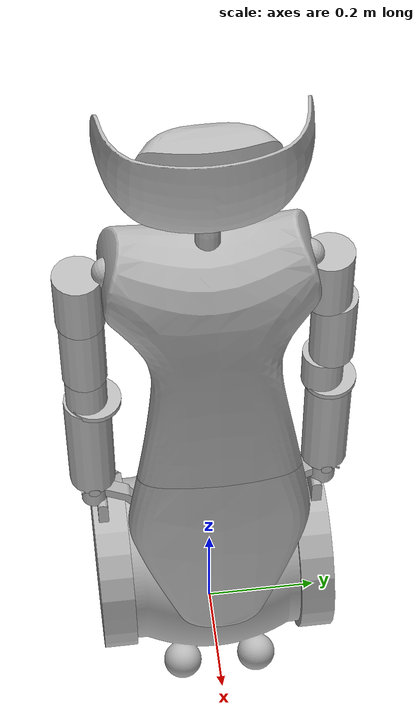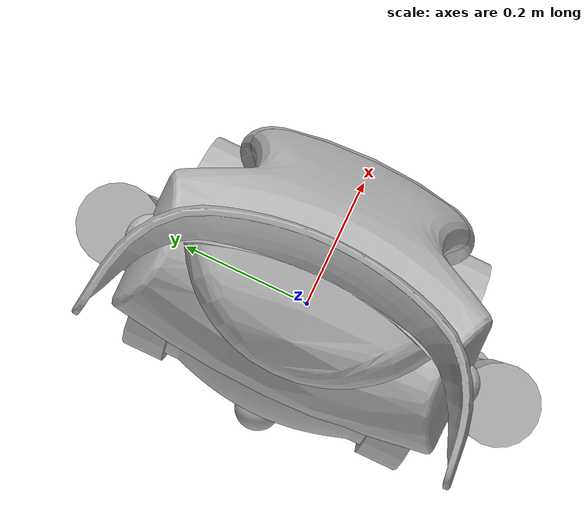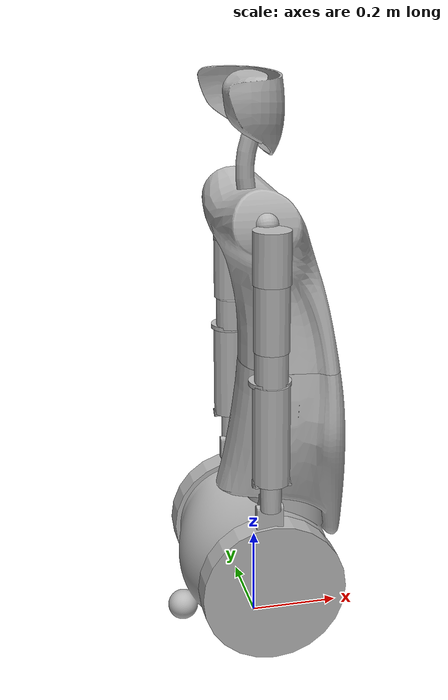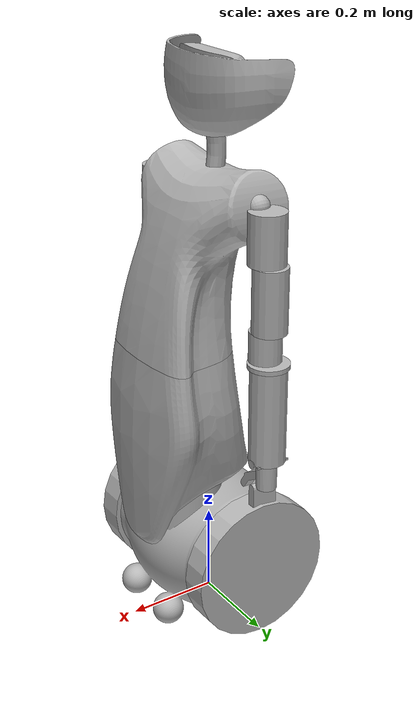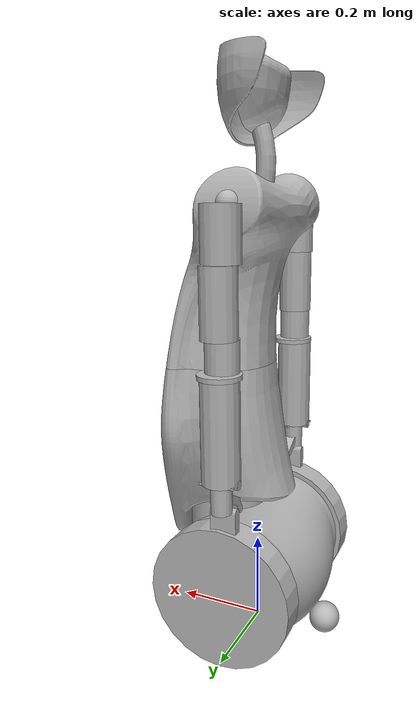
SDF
<?xml version='1.0'?>
<sdf version='1.5'>
  <model name="SIM_CER_ROBOT_fixed">
    <include>
      <uri>model://cer</uri>
      <pose>0.0 0.0 0.0 0.0 0.0 0.0</pose>
    </include>

    <joint name="fixed to ground" type="revolute">
      <parent>world</parent>
      <child>SIM_CER_ROBOT::mobile_base_body</child>
       <axis>
        <limit>
          <lower>0</lower>
          <upper>0</upper>
        </limit>
        <xyz>0 0 0</xyz>
        </axis>
    </joint>

  </model>
</sdf>

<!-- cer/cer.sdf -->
<sdf version='1.5'>
  <model name='SIM_CER_ROBOT'>
    <link name='mobile_base_body'>
      <pose>0 0 0 0 -0 0</pose>
      <inertial>
        <pose>0.016717 0 0.201998 0 -0 0</pose>
        <mass>16</mass>
        <inertia>
          <ixx>0.331884</ixx>
          <ixy>0</ixy>
          <ixz>-0.0448172</ixz>
          <iyy>0.34974</iyy>
          <iyz>0</iyz>
          <izz>0.21095</izz>
        </inertia>
      </inertial>
      <collision name='mobile_base_body_collision'>
        <pose>0 0 0 0 -0 0</pose>
        <geometry>
          <mesh>
            <scale>0.001 0.001 0.001</scale>
            <uri>model://cer/meshes/stl/sim_cer_mobilebase_body_prt.stl</uri>
          </mesh>
        </geometry>
        <surface>
            <friction>
              <ode>
                <mu>0.0</mu>
                <mu2>0.0</mu2>
                <slip1>1.0</slip1>
                <slip2>1.0</slip2>
              </ode>
            </friction>
         </surface>
      </collision>
      <visual name='mobile_base_body_visual'>
        <pose>0 0 0 0 -0 0</pose>
        <geometry>
          <mesh>
            <scale>0.001 0.001 0.001</scale>
            <uri>model://cer/meshes/stl/sim_cer_mobilebase_body_prt.stl</uri>
          </mesh>
        </geometry>
      </visual>
      <sensor name ='base_laser' type='ray'>
      <pose>0.3 0 0.1 0 0 0</pose>
      <visualize>true</visualize>
      <update_rate>40</update_rate>
      <ray>
        <scan>
          <horizontal>
            <samples>360</samples>
            <resolution>1</resolution>
            <min_angle>-3.14</min_angle>
            <max_angle>3.14</max_angle>
          </horizontal>
        </scan>
        <range>
          <min>0.10</min>
          <max>5.0</max>
          <resolution>0.01</resolution>
        </range>
        <noise>
          <type>gaussian</type>
          <mean>0.0</mean>
          <stddev>0.005</stddev>
        </noise>
      </ray>
        <plugin name='laser_sensor' filename='libgazebo_yarp_lasersensor.so'>
           <yarpConfigurationFile>model://cer/conf/gazebo_cer_laser_sensor.ini</yarpConfigurationFile>
        </plugin>
      </sensor>
    </link>
    <link name='mobile_base_l_tyre'>
      <pose>0 0.15 0.16 0 -0 0</pose>
      <inertial>
        <pose>0 0.034423 0 0 -0 0</pose>
        <mass>3</mass>
        <inertia>
          <ixx>0.0200167</ixx>
          <ixy>0</ixy>
          <ixz>0</ixz>
          <iyy>0.0376153</iyy>
          <iyz>0</iyz>
          <izz>0.0200167</izz>
        </inertia>
      </inertial>
      <collision name='mobile_base_l_tyre_collision'>
        <pose>0 -0.15 -0.16 0 -0 0</pose>
        <geometry>
          <mesh>
            <scale>0.001 0.001 0.001</scale>
            <uri>model://cer/meshes/stl/sim_cer_mobilebase_l_tyre_prt.stl</uri>
          </mesh>
        </geometry>
      </collision>
      <visual name='mobile_base_l_tyre_visual'>
        <pose>0 -0.15 -0.16 0 -0 0</pose>
        <geometry>
          <mesh>
            <scale>0.001 0.001 0.001</scale>
            <uri>model://cer/meshes/stl/sim_cer_mobilebase_l_tyre_prt.stl</uri>
          </mesh>
        </geometry>
      </visual>
    </link>
    <joint name='mobile_base_l_wheel' type='revolute'>
      <child>mobile_base_l_tyre</child>
      <parent>mobile_base_body</parent>
      <axis>
        <xyz>0 1 0</xyz>
        <limit>
          <effort>100</effort>
          <velocity>50000</velocity>
        </limit>
        <dynamics>
          <damping>1</damping>
          <friction>0</friction>
          <spring_reference>0</spring_reference>
          <spring_stiffness>0</spring_stiffness>
        </dynamics>
        <use_parent_model_frame>1</use_parent_model_frame>
      </axis>
      <physics>
        <ode>
          <implicit_spring_damper>1</implicit_spring_damper>
          <cfm_damping>1</cfm_damping>
          <limit>
            <cfm>0</cfm>
            <erp>0.2</erp>
          </limit>
        </ode>
      </physics>
    </joint>
    <link name='mobile_base_r_tyre'>
      <pose>0 -0.15 0.16 0 -0 0</pose>
      <inertial>
        <pose>0 -0.034423 0 0 -0 0</pose>
        <mass>3</mass>
        <inertia>
          <ixx>0.0200167</ixx>
          <ixy>0</ixy>
          <ixz>0</ixz>
          <iyy>0.0376153</iyy>
          <iyz>0</iyz>
          <izz>0.0200167</izz>
        </inertia>
      </inertial>
      <collision name='mobile_base_r_tyre_collision'>
        <pose>0 0.15 -0.16 0 -0 0</pose>
        <geometry>
          <mesh>
            <scale>0.001 0.001 0.001</scale>
            <uri>model://cer/meshes/stl/sim_cer_mobilebase_r_tyre_prt.stl</uri>
          </mesh>
        </geometry>
      </collision>
      <visual name='mobile_base_r_tyre_visual'>
        <pose>0 0.15 -0.16 0 -0 0</pose>
        <geometry>
          <mesh>
            <scale>0.001 0.001 0.001</scale>
            <uri>model://cer/meshes/stl/sim_cer_mobilebase_r_tyre_prt.stl</uri>
          </mesh>
        </geometry>
      </visual>
    </link>
    <joint name='mobile_base_r_wheel' type='revolute'>
      <child>mobile_base_r_tyre</child>
      <parent>mobile_base_body</parent>
      <axis>
        <xyz>0 1 0</xyz>
        <limit>
          <effort>100</effort>
          <velocity>50000</velocity>
        </limit>
        <dynamics>
          <damping>1</damping>
          <friction>0</friction>
          <spring_reference>0</spring_reference>
          <spring_stiffness>0</spring_stiffness>
        </dynamics>
        <use_parent_model_frame>1</use_parent_model_frame>
      </axis>
      <physics>
        <ode>
          <implicit_spring_damper>1</implicit_spring_damper>
          <cfm_damping>1</cfm_damping>
          <limit>
            <cfm>0</cfm>
            <erp>0.2</erp>
          </limit>
        </ode>
      </physics>
    </joint>
    <link name='torso_tripod_slider_eq'>
      <pose>0.074 0 0.231 0 -0 0</pose>
      <inertial>
        <pose>0.010986 9e-06 0.236044 0 -0 0</pose>
        <mass>2.5</mass>
        <inertia>
          <ixx>0.0334422</ixx>
          <ixy>0</ixy>
          <ixz>0.00203295</ixz>
          <iyy>0.0329538</iyy>
          <iyz>2.22187e-06</iyz>
          <izz>0.022808</izz>
        </inertia>
      </inertial>
      <collision name='torso_tripod_slider_eq_collision'>
        <pose>-0.074 0 -0.231 0 -0 0</pose>
        <geometry>
          <mesh>
            <scale>0.001 0.001 0.001</scale>
            <uri>model://cer/meshes/stl/sim_cer_torso_tripod_slider_eq_prt.stl</uri>
          </mesh>
        </geometry>
      </collision>
      <visual name='torso_tripod_slider_eq_visual'>
        <pose>-0.074 0 -0.231 0 -0 0</pose>
        <geometry>
          <mesh>
            <scale>0.001 0.001 0.001</scale>
            <uri>model://cer/meshes/stl/sim_cer_torso_tripod_slider_eq_prt.stl</uri>
          </mesh>
        </geometry>
      </visual>
    </link>
    <joint name='torso_tripod_heave_eq' type='prismatic'>
      <child>torso_tripod_slider_eq</child>
      <parent>mobile_base_body</parent>
      <axis>
        <xyz>0 0 1</xyz>
        <limit>
          <lower>-0.05</lower>
          <upper>0.15</upper>
          <effort>50000</effort>
          <velocity>50000</velocity>
        </limit>
        <dynamics>
          <damping>1000</damping>
          <friction>0</friction>
          <spring_reference>0</spring_reference>
          <spring_stiffness>0</spring_stiffness>
        </dynamics>
        <use_parent_model_frame>1</use_parent_model_frame>
      </axis>
      <physics>
        <ode>
          <implicit_spring_damper>1</implicit_spring_damper>
          <cfm_damping>1</cfm_damping>
          <limit>
            <cfm>0.1</cfm>
            <erp>0.2</erp>
          </limit>
        </ode>
      </physics>
    </joint>
    <link name='torso_tripod_pin_eq'>
      <pose>0.074 0 0.63 3.14159 -0 0</pose>
      <inertial>
        <pose>0 0 0 0 -0 0</pose>
        <mass>0.25</mass>
        <inertia>
          <ixx>2.8125e-05</ixx>
          <ixy>0</ixy>
          <ixz>0</ixz>
          <iyy>0.000222396</iyy>
          <iyz>0</iyz>
          <izz>0.000222396</izz>
        </inertia>
      </inertial>
      <collision name='torso_tripod_pin_eq_collision'>
        <pose>0 0 0 0 -0 0</pose>
        <geometry>
          <mesh>
            <scale>0.001 0.001 0.001</scale>
            <uri>model://cer/meshes/stl/sim_cer_torso_tripod_pin_eq_prt.stl</uri>
          </mesh>
        </geometry>
      </collision>
      <visual name='torso_tripod_pin_eq_visual'>
        <pose>0 0 0 0 -0 0</pose>
        <geometry>
          <mesh>
            <scale>0.001 0.001 0.001</scale>
            <uri>model://cer/meshes/stl/sim_cer_torso_tripod_pin_eq_prt.stl</uri>
          </mesh>
        </geometry>
      </visual>
    </link>
    <joint name='torso_tripod_roll_eq' type='revolute'>
      <child>torso_tripod_pin_eq</child>
      <parent>torso_tripod_slider_eq</parent>
      <axis>
        <xyz>1 0 0</xyz>
        <limit>
          <lower>-0.523599</lower>
          <upper>0.523599</upper>
          <effort>50000</effort>
          <velocity>50000</velocity>
        </limit>
        <dynamics>
          <damping>10</damping>
          <friction>0</friction>
          <spring_reference>0</spring_reference>
          <spring_stiffness>0</spring_stiffness>
        </dynamics>
        <use_parent_model_frame>1</use_parent_model_frame>
      </axis>
      <physics>
        <ode>
          <implicit_spring_damper>1</implicit_spring_damper>
          <cfm_damping>1</cfm_damping>
          <limit>
            <cfm>0.1</cfm>
            <erp>20</erp>
          </limit>
        </ode>
      </physics>
    </joint>
    <link name='torso_tripod_platform'>
      <pose>0.074 0 0.63 -0 -0 0</pose>
      <inertial>
        <pose>0 0 0 0 -0 0</pose>
        <mass>0.25</mass>
        <inertia>
          <ixx>0.000255208</ixx>
          <ixy>0</ixy>
          <ixz>0</ixz>
          <iyy>0.000255208</iyy>
          <iyz>0</iyz>
          <izz>0.00050625</izz>
        </inertia>
      </inertial>
      <collision name='torso_tripod_platform_collision'>
        <pose>-0.074 0 -0.63 0 -0 0</pose>
        <geometry>
          <mesh>
            <scale>0.001 0.001 0.001</scale>
            <uri>model://cer/meshes/stl/sim_cer_torso_tripod_platform_prt.stl</uri>
          </mesh>
        </geometry>
      </collision>
      <visual name='torso_tripod_platform_visual'>
        <pose>-0.074 0 -0.63 0 -0 0</pose>
        <geometry>
          <mesh>
            <scale>0.001 0.001 0.001</scale>
            <uri>model://cer/meshes/stl/sim_cer_torso_tripod_platform_prt.stl</uri>
          </mesh>
        </geometry>
      </visual>
    </link>
    <joint name='torso_tripod_pitch_eq' type='revolute'>
      <child>torso_tripod_platform</child>
      <parent>torso_tripod_pin_eq</parent>
      <axis>
        <xyz>0 1 -0</xyz>
        <limit>
          <lower>-0.523599</lower>
          <upper>0.523599</upper>
          <effort>50000</effort>
          <velocity>50000</velocity>
        </limit>
        <dynamics>
          <damping>1000</damping>
          <friction>0</friction>
          <spring_reference>0</spring_reference>
          <spring_stiffness>0</spring_stiffness>
        </dynamics>
        <use_parent_model_frame>1</use_parent_model_frame>
      </axis>
      <physics>
        <ode>
          <implicit_spring_damper>1</implicit_spring_damper>
          <cfm_damping>1</cfm_damping>
          <limit>
            <cfm>0</cfm>
            <erp>0.2</erp>
          </limit>
        </ode>
      </physics>
    </joint>
    <link name='torso_chest'>
      <pose>0.074 0 0.63 -0 -0 0</pose>
      <inertial>
        <pose>-0.036697 1e-05 0.206634 0 -0 0</pose>
        <mass>10</mass>
        <inertia>
          <ixx>0.187606</ixx>
          <ixy>0</ixy>
          <ixz>0.0385076</ixz>
          <iyy>0.16987</iyy>
          <iyz>-5.48478e-06</iyz>
          <izz>0.0906842</izz>
        </inertia>
      </inertial>
      <collision name='torso_chest_collision'>
        <pose>-0.074 0 -0.63 0 -0 0</pose>
        <geometry>
          <mesh>
            <scale>0.001 0.001 0.001</scale>
            <uri>model://cer/meshes/stl/sim_cer_torso_chest_prt.stl</uri>
          </mesh>
        </geometry>
      </collision>
      <visual name='torso_chest_visual'>
        <pose>-0.074 0 -0.63 0 -0 0</pose>
        <geometry>
          <mesh>
            <scale>0.001 0.001 0.001</scale>
            <uri>model://cer/meshes/stl/sim_cer_torso_chest_prt.stl</uri>
          </mesh>
        </geometry>
      </visual>
    </link>
    <joint name='torso_yaw' type='revolute'>
      <child>torso_chest</child>
      <parent>torso_tripod_platform</parent>
      <axis>
        <xyz>0 0 1</xyz>
        <limit>
          <lower>-1.0472</lower>
          <upper>1.0472</upper>
          <effort>50000</effort>
          <velocity>50000</velocity>
        </limit>
        <dynamics>
          <damping>1</damping>
          <friction>0</friction>
          <spring_reference>0</spring_reference>
          <spring_stiffness>0</spring_stiffness>
        </dynamics>
        <use_parent_model_frame>1</use_parent_model_frame>
      </axis>
      <physics>
        <ode>
          <implicit_spring_damper>1</implicit_spring_damper>
          <cfm_damping>1</cfm_damping>
          <limit>
            <cfm>0</cfm>
            <erp>0.2</erp>
          </limit>
        </ode>
      </physics>
    </joint>
    <link name='l_clavicle'>
      <pose>-0.01 0.17 0.97 -0 -0 0</pose>
      <inertial>
        <pose>0 0 0 0 -0 0</pose>
        <mass>0.2</mass>
        <inertia>
          <ixx>0.000288</ixx>
          <ixy>0</ixy>
          <ixz>0</ixz>
          <iyy>0.000288</iyy>
          <iyz>0</iyz>
          <izz>0.000288</izz>
        </inertia>
      </inertial>
      <collision name='l_clavicle_collision'>
        <pose>0.01 -0.17 -0.97 0 -0 0</pose>
        <geometry>
          <mesh>
            <scale>0.001 0.001 0.001</scale>
            <uri>model://cer/meshes/stl/sim_cer_l_clavicle_prt.stl</uri>
          </mesh>
        </geometry>
      </collision>
      <visual name='l_clavicle_visual'>
        <pose>0.01 -0.17 -0.97 0 -0 0</pose>
        <geometry>
          <mesh>
            <scale>0.001 0.001 0.001</scale>
            <uri>model://cer/meshes/stl/sim_cer_l_clavicle_prt.stl</uri>
          </mesh>
        </geometry>
      </visual>
    </link>
    <joint name='l_shoulder_pitch' type='revolute'>
      <child>l_clavicle</child>
      <parent>torso_chest</parent>
      <axis>
        <xyz>0 -0.970296 -0.241922</xyz>
        <limit>
          <lower>-0.349066</lower>
          <upper>1.74533</upper>
          <effort>50000</effort>
          <velocity>50000</velocity>
        </limit>
        <dynamics>
          <damping>1</damping>
          <friction>0</friction>
          <spring_reference>0</spring_reference>
          <spring_stiffness>0</spring_stiffness>
        </dynamics>
        <use_parent_model_frame>1</use_parent_model_frame>
      </axis>
      <physics>
        <ode>
          <implicit_spring_damper>1</implicit_spring_damper>
          <cfm_damping>1</cfm_damping>
          <limit>
            <cfm>0</cfm>
            <erp>0.2</erp>
          </limit>
        </ode>
      </physics>
    </joint>
    <link name='l_shoulder'>
      <pose>-0.01 0.17 0.97 -0 -0 0</pose>
      <inertial>
        <pose>0 0.034 -0.055 0 -0 0</pose>
        <mass>1</mass>
        <inertia>
          <ixx>0.00140833</ixx>
          <ixy>0</ixy>
          <ixz>0</ixz>
          <iyy>0.00140833</iyy>
          <iyz>0</iyz>
          <izz>0.0008</izz>
        </inertia>
      </inertial>
      <collision name='l_shoulder_collision'>
        <pose>0.01 -0.17 -0.97 0 -0 0</pose>
        <geometry>
          <mesh>
            <scale>0.001 0.001 0.001</scale>
            <uri>model://cer/meshes/stl/sim_cer_l_shoulder_prt.stl</uri>
          </mesh>
        </geometry>
      </collision>
      <visual name='l_shoulder_visual'>
        <pose>0.01 -0.17 -0.97 0 -0 0</pose>
        <geometry>
          <mesh>
            <scale>0.001 0.001 0.001</scale>
            <uri>model://cer/meshes/stl/sim_cer_l_shoulder_prt.stl</uri>
          </mesh>
        </geometry>
      </visual>
    </link>
    <joint name='l_shoulder_roll' type='revolute'>
      <child>l_shoulder</child>
      <parent>l_clavicle</parent>
      <axis>
        <xyz>1 0 0</xyz>
        <limit>
          <lower>-0.174533</lower>
          <upper>1.74533</upper>
          <effort>50000</effort>
          <velocity>50000</velocity>
        </limit>
        <dynamics>
          <damping>1</damping>
          <friction>0</friction>
          <spring_reference>0</spring_reference>
          <spring_stiffness>0</spring_stiffness>
        </dynamics>
        <use_parent_model_frame>1</use_parent_model_frame>
      </axis>
      <physics>
        <ode>
          <implicit_spring_damper>1</implicit_spring_damper>
          <cfm_damping>1</cfm_damping>
          <limit>
            <cfm>0</cfm>
            <erp>0.2</erp>
          </limit>
        </ode>
      </physics>
    </joint>
    <link name='l_upperarm'>
      <pose>-0.01 0.204 0.86 -0 -0 0</pose>
      <inertial>
        <pose>0 0 -0.0705 0 -0 0</pose>
        <mass>1</mass>
        <inertia>
          <ixx>0.00200831</ixx>
          <ixy>0</ixy>
          <ixz>0</ixz>
          <iyy>0.00200831</iyy>
          <iyz>0</iyz>
          <izz>0.000703125</izz>
        </inertia>
      </inertial>
      <collision name='l_upperarm_collision'>
        <pose>0.01 -0.204 -0.86 0 -0 0</pose>
        <geometry>
          <mesh>
            <scale>0.001 0.001 0.001</scale>
            <uri>model://cer/meshes/stl/sim_cer_l_upperarm_prt.stl</uri>
          </mesh>
        </geometry>
      </collision>
      <visual name='l_upperarm_visual'>
        <pose>0.01 -0.204 -0.86 0 -0 0</pose>
        <geometry>
          <mesh>
            <scale>0.001 0.001 0.001</scale>
            <uri>model://cer/meshes/stl/sim_cer_l_upperarm_prt.stl</uri>
          </mesh>
        </geometry>
      </visual>
    </link>
    <joint name='l_shoulder_yaw' type='revolute'>
      <child>l_upperarm</child>
      <parent>l_shoulder</parent>
      <axis>
        <xyz>0 0 1</xyz>
        <limit>
          <lower>-1.5708</lower>
          <upper>1.5708</upper>
          <effort>50000</effort>
          <velocity>50000</velocity>
        </limit>
        <dynamics>
          <damping>1</damping>
          <friction>0</friction>
          <spring_reference>0</spring_reference>
          <spring_stiffness>0</spring_stiffness>
        </dynamics>
        <use_parent_model_frame>1</use_parent_model_frame>
      </axis>
      <physics>
        <ode>
          <implicit_spring_damper>1</implicit_spring_damper>
          <cfm_damping>1</cfm_damping>
          <limit>
            <cfm>0</cfm>
            <erp>0.2</erp>
          </limit>
        </ode>
      </physics>
    </joint>
    <link name='l_forearm'>
      <pose>-0.01 0.204 0.719 -0 -0 0</pose>
      <inertial>
        <pose>0 0 -0.0355 0 -0 0</pose>
        <mass>0.5</mass>
        <inertia>
          <ixx>0.000363167</ixx>
          <ixy>0</ixy>
          <ixz>0</ixz>
          <iyy>0.000363167</iyy>
          <iyz>0</iyz>
          <izz>0.00030625</izz>
        </inertia>
      </inertial>
      <collision name='l_forearm_collision'>
        <pose>0.01 -0.204 -0.719 0 -0 0</pose>
        <geometry>
          <mesh>
            <scale>0.001 0.001 0.001</scale>
            <uri>model://cer/meshes/stl/sim_cer_l_forearm_prt.stl</uri>
          </mesh>
        </geometry>
      </collision>
      <visual name='l_forearm_visual'>
        <pose>0.01 -0.204 -0.719 0 -0 0</pose>
        <geometry>
          <mesh>
            <scale>0.001 0.001 0.001</scale>
            <uri>model://cer/meshes/stl/sim_cer_l_forearm_prt.stl</uri>
          </mesh>
        </geometry>
      </visual>
    </link>
    <joint name='l_elbow' type='revolute'>
      <child>l_forearm</child>
      <parent>l_upperarm</parent>
      <axis>
        <xyz>0 -1 0</xyz>
        <limit>
          <lower>0</lower>
          <upper>2.44346</upper>
          <effort>50000</effort>
          <velocity>50000</velocity>
        </limit>
        <dynamics>
          <damping>1</damping>
          <friction>0</friction>
          <spring_reference>0</spring_reference>
          <spring_stiffness>0</spring_stiffness>
        </dynamics>
        <use_parent_model_frame>1</use_parent_model_frame>
      </axis>
      <physics>
        <ode>
          <implicit_spring_damper>1</implicit_spring_damper>
          <cfm_damping>1</cfm_damping>
          <limit>
            <cfm>0</cfm>
            <erp>0.2</erp>
          </limit>
        </ode>
      </physics>
    </joint>
    <link name='l_wrist_tripod_base'>
      <pose>-0.01 0.204 0.648 -0 -0 0</pose>
      <inertial>
        <pose>0 0 0 0 -0 0</pose>
        <mass>0.2</mass>
        <inertia>
          <ixx>0.000102917</ixx>
          <ixy>0</ixy>
          <ixz>0</ixz>
          <iyy>0.000102917</iyy>
          <iyz>0</iyz>
          <izz>0.0002025</izz>
        </inertia>
      </inertial>
      <collision name='l_wrist_tripod_base_collision'>
        <pose>0.01 -0.204 -0.648 0 -0 0</pose>
        <geometry>
          <mesh>
            <scale>0.001 0.001 0.001</scale>
            <uri>model://cer/meshes/stl/sim_cer_l_wrist_tripod_base_prt.stl</uri>
          </mesh>
        </geometry>
      </collision>
      <visual name='l_wrist_tripod_base_visual'>
        <pose>0.01 -0.204 -0.648 0 -0 0</pose>
        <geometry>
          <mesh>
            <scale>0.001 0.001 0.001</scale>
            <uri>model://cer/meshes/stl/sim_cer_l_wrist_tripod_base_prt.stl</uri>
          </mesh>
        </geometry>
      </visual>
    </link>
    <joint name='l_wrist_prosupination' type='revolute'>
      <child>l_wrist_tripod_base</child>
      <parent>l_forearm</parent>
      <axis>
        <xyz>0 0 1</xyz>
        <limit>
          <lower>-1.5708</lower>
          <upper>1.5708</upper>
          <effort>50000</effort>
          <velocity>50000</velocity>
        </limit>
        <dynamics>
          <damping>1</damping>
          <friction>0</friction>
          <spring_reference>0</spring_reference>
          <spring_stiffness>0</spring_stiffness>
        </dynamics>
        <use_parent_model_frame>1</use_parent_model_frame>
      </axis>
      <physics>
        <ode>
          <implicit_spring_damper>1</implicit_spring_damper>
          <cfm_damping>1</cfm_damping>
          <limit>
            <cfm>0</cfm>
            <erp>0.2</erp>
          </limit>
        </ode>
      </physics>
    </joint>
    <link name='l_wrist_tripod_slider_eq'>
      <pose>-0.01 0.204 0.719 -0 -0 0</pose>
      <inertial>
        <pose>0 0 -0.181 0 -0 0</pose>
        <mass>0.2</mass>
        <inertia>
          <ixx>0.000886667</ixx>
          <ixy>0</ixy>
          <ixz>0</ixz>
          <iyy>0.000886667</iyy>
          <iyz>0</iyz>
          <izz>0.00016</izz>
        </inertia>
      </inertial>
      <collision name='l_wrist_tripod_slider_eq_collision'>
        <pose>0.01 -0.204 -0.719 0 -0 0</pose>
        <geometry>
          <mesh>
            <scale>0.001 0.001 0.001</scale>
            <uri>model://cer/meshes/stl/sim_cer_l_wrist_tripod_slider_prt.stl</uri>
          </mesh>
        </geometry>
      </collision>
      <visual name='l_wrist_tripod_slider_eq_visual'>
        <pose>0.01 -0.204 -0.719 0 -0 0</pose>
        <geometry>
          <mesh>
            <scale>0.001 0.001 0.001</scale>
            <uri>model://cer/meshes/stl/sim_cer_l_wrist_tripod_slider_prt.stl</uri>
          </mesh>
        </geometry>
      </visual>
    </link>
    <joint name='l_wrist_tripod_heave_eq' type='prismatic'>
      <child>l_wrist_tripod_slider_eq</child>
      <parent>l_wrist_tripod_base</parent>
      <axis>
        <xyz>0 -0 -1</xyz>
        <limit>
          <lower>0.0</lower>
          <upper>0.12</upper>
          <effort>50000</effort>
          <velocity>50000</velocity>
        </limit>
        <dynamics>
          <damping>1</damping>
          <friction>0</friction>
          <spring_reference>0</spring_reference>
          <spring_stiffness>0</spring_stiffness>
        </dynamics>
        <use_parent_model_frame>1</use_parent_model_frame>
      </axis>
      <physics>
        <ode>
          <implicit_spring_damper>1</implicit_spring_damper>
          <cfm_damping>1</cfm_damping>
          <limit>
            <cfm>0</cfm>
            <erp>0.2</erp>
          </limit>
        </ode>
      </physics>
    </joint>
    <link name='l_wrist_tripod_pin_eq'>
      <pose>-0.01 0.204 0.428 2.30723 1.57079 2.30723</pose>
      <inertial>
        <pose>0 0 0 0 -0 0</pose>
        <mass>0.2</mass>
        <inertia>
          <ixx>0.000111667</ixx>
          <ixy>0</ixy>
          <ixz>0</ixz>
          <iyy>0.000111667</iyy>
          <iyz>0</iyz>
          <izz>1e-05</izz>
        </inertia>
      </inertial>
      <collision name='l_wrist_tripod_pin_eq_collision'>
        <pose>0 0 0 0 -0 0</pose>
        <geometry>
          <mesh>
            <scale>0.001 0.001 0.001</scale>
            <uri>model://cer/meshes/stl/sim_cer_l_wrist_tripod_pin_eq_prt.stl</uri>
          </mesh>
        </geometry>
      </collision>
      <visual name='l_wrist_tripod_pin_eq_visual'>
        <pose>0 0 0 0 -0 0</pose>
        <geometry>
          <mesh>
            <scale>0.001 0.001 0.001</scale>
            <uri>model://cer/meshes/stl/sim_cer_l_wrist_tripod_pin_eq_prt.stl</uri>
          </mesh>
        </geometry>
      </visual>
    </link>
    <joint name='l_wrist_tripod_roll_eq' type='revolute'>
      <child>l_wrist_tripod_pin_eq</child>
      <parent>l_wrist_tripod_slider_eq</parent>
      <axis>
        <xyz>1 0 0</xyz>
        <limit>
          <lower>-0.523599</lower>
          <upper>0.523599</upper>
          <effort>50000</effort>
          <velocity>50000</velocity>
        </limit>
        <dynamics>
          <damping>1</damping>
          <friction>0</friction>
          <spring_reference>0</spring_reference>
          <spring_stiffness>0</spring_stiffness>
        </dynamics>
        <use_parent_model_frame>1</use_parent_model_frame>
      </axis>
      <physics>
        <ode>
          <implicit_spring_damper>1</implicit_spring_damper>
          <cfm_damping>1</cfm_damping>
          <limit>
            <cfm>0</cfm>
            <erp>0.2</erp>
          </limit>
        </ode>
      </physics>
    </joint>
    <link name='l_hand_root'>
      <pose>-0.01 0.205 0.428 -0 -0 0</pose>
      <inertial>
        <pose>0 -0.001 -0.030193 0 -0 0</pose>
        <mass>0.5</mass>
        <inertia>
          <ixx>0.000277843</ixx>
          <ixy>0</ixy>
          <ixz>0</ixz>
          <iyy>0.000277843</iyy>
          <iyz>0</iyz>
          <izz>0.000141191</izz>
        </inertia>
      </inertial>
      <collision name='l_hand_root_collision'>
        <pose>0.01 -0.205 -0.428 0 -0 0</pose>
        <geometry>
          <mesh>
            <scale>0.001 0.001 0.001</scale>
            <uri>model://cer/meshes/stl/sim_cer_l_hand_root_prt.stl</uri>
          </mesh>
        </geometry>
      </collision>
      <visual name='l_hand_root_visual'>
        <pose>0.01 -0.205 -0.428 0 -0 0</pose>
        <geometry>
          <mesh>
            <scale>0.001 0.001 0.001</scale>
            <uri>model://cer/meshes/stl/sim_cer_l_hand_root_prt.stl</uri>
          </mesh>
        </geometry>
      </visual>
    </link>
    <joint name='l_wrist_tripod_pitch_eq' type='revolute'>
      <child>l_hand_root</child>
      <parent>l_wrist_tripod_pin_eq</parent>
      <axis>
        <xyz>0 -1 0</xyz>
        <limit>
          <lower>-0.523599</lower>
          <upper>0.523599</upper>
          <effort>50000</effort>
          <velocity>50000</velocity>
        </limit>
        <dynamics>
          <damping>1</damping>
          <friction>0</friction>
          <spring_reference>0</spring_reference>
          <spring_stiffness>0</spring_stiffness>
        </dynamics>
        <use_parent_model_frame>1</use_parent_model_frame>
      </axis>
      <physics>
        <ode>
          <implicit_spring_damper>1</implicit_spring_damper>
          <cfm_damping>1</cfm_damping>
          <limit>
            <cfm>0</cfm>
            <erp>0.2</erp>
          </limit>
        </ode>
      </physics>
    </joint>
    <link name='l_hand_paddle'>
      <pose>-0.01 0.19139 0.360023 -0 -0 0</pose>
      <inertial>
        <pose>0 0 -0.0387 0 -0 0</pose>
        <mass>0.1</mass>
        <inertia>
          <ixx>7.95585e-05</ixx>
          <ixy>0</ixy>
          <ixz>0</ixz>
          <iyy>0.000102575</iyy>
          <iyz>0</iyz>
          <izz>2.78549e-05</izz>
        </inertia>
      </inertial>
      <collision name='l_hand_paddle_collision'>
        <pose>0.01 -0.19139 -0.360023 0 -0 0</pose>
        <geometry>
          <mesh>
            <scale>0.001 0.001 0.001</scale>
            <uri>model://cer/meshes/stl/sim_cer_l_hand_paddle_prt.stl</uri>
          </mesh>
        </geometry>
      </collision>
      <visual name='l_hand_paddle_visual'>
        <pose>0.01 -0.19139 -0.360023 0 -0 0</pose>
        <geometry>
          <mesh>
            <scale>0.001 0.001 0.001</scale>
            <uri>model://cer/meshes/stl/sim_cer_l_hand_paddle_prt.stl</uri>
          </mesh>
        </geometry>
      </visual>
    </link>
    <joint name='l_hand_paddle_joint' type='revolute'>
      <child>l_hand_paddle</child>
      <parent>l_hand_root</parent>
      <axis>
        <xyz>-1 0 -0</xyz>
        <limit>
          <lower>0</lower>
          <upper>1.0472</upper>
          <effort>50000</effort>
          <velocity>50000</velocity>
        </limit>
        <dynamics>
          <damping>1</damping>
          <friction>0</friction>
          <spring_reference>0</spring_reference>
          <spring_stiffness>0</spring_stiffness>
        </dynamics>
        <use_parent_model_frame>1</use_parent_model_frame>
      </axis>
      <physics>
        <ode>
          <implicit_spring_damper>1</implicit_spring_damper>
          <cfm_damping>1</cfm_damping>
          <limit>
            <cfm>0</cfm>
            <erp>0.2</erp>
          </limit>
        </ode>
      </physics>
    </joint>
    <link name='l_hand_thumb'>
      <pose>-0.01 0.184352 0.385156 -0 -0 0</pose>
      <inertial>
        <pose>0 -0.025716 -0.018464 0 -0 0</pose>
        <mass>0.1</mass>
        <inertia>
          <ixx>5.68818e-05</ixx>
          <ixy>0</ixy>
          <ixz>0</ixz>
          <iyy>2.87259e-05</iyy>
          <iyz>-2.49756e-05</iyz>
          <izz>3.69449e-05</izz>
        </inertia>
      </inertial>
      <collision name='l_hand_thumb_collision'>
        <pose>0.01 -0.184352 -0.385156 0 -0 0</pose>
        <geometry>
          <mesh>
            <scale>0.001 0.001 0.001</scale>
            <uri>model://cer/meshes/stl/sim_cer_l_hand_thumb_prt.stl</uri>
          </mesh>
        </geometry>
      </collision>
      <visual name='l_hand_thumb_visual'>
        <pose>0.01 -0.184352 -0.385156 0 -0 0</pose>
        <geometry>
          <mesh>
            <scale>0.001 0.001 0.001</scale>
            <uri>model://cer/meshes/stl/sim_cer_l_hand_thumb_prt.stl</uri>
          </mesh>
        </geometry>
      </visual>
    </link>
    <joint name='l_hand_thumb_joint' type='revolute'>
      <child>l_hand_thumb</child>
      <parent>l_hand_root</parent>
      <axis>
        <xyz>1 0 0</xyz>
        <limit>
          <lower>0</lower>
          <upper>1.22173</upper>
          <effort>50000</effort>
          <velocity>50000</velocity>
        </limit>
        <dynamics>
          <damping>1</damping>
          <friction>0</friction>
          <spring_reference>0</spring_reference>
          <spring_stiffness>0</spring_stiffness>
        </dynamics>
        <use_parent_model_frame>1</use_parent_model_frame>
      </axis>
      <physics>
        <ode>
          <implicit_spring_damper>1</implicit_spring_damper>
          <cfm_damping>1</cfm_damping>
          <limit>
            <cfm>0</cfm>
            <erp>0.2</erp>
          </limit>
        </ode>
      </physics>
    </joint>
    <link name='neck'>
      <pose>-0.02 0.000647 1 -0 -0 0</pose>
      <inertial>
        <pose>0.005658 -0.000647 0.06232 0 -0 0</pose>
        <mass>0.5</mass>
        <inertia>
          <ixx>0.00110442</ixx>
          <ixy>0</ixy>
          <ixz>-6.96774e-05</ixz>
          <iyy>0.00111727</iyy>
          <iyz>0</iyz>
          <izz>0.000112854</izz>
        </inertia>
      </inertial>
      <collision name='neck_collision'>
        <pose>0.02 -0.000647 -1 0 -0 0</pose>
        <geometry>
          <mesh>
            <scale>0.001 0.001 0.001</scale>
            <uri>model://cer/meshes/stl/sim_cer_neck_prt.stl</uri>
          </mesh>
        </geometry>
      </collision>
      <visual name='neck_visual'>
        <pose>0.02 -0.000647 -1 0 -0 0</pose>
        <geometry>
          <mesh>
            <scale>0.001 0.001 0.001</scale>
            <uri>model://cer/meshes/stl/sim_cer_neck_prt.stl</uri>
          </mesh>
        </geometry>
      </visual>
    </link>
    <joint name='neck_pitch' type='revolute'>
      <child>neck</child>
      <parent>torso_chest</parent>
      <axis>
        <xyz>0 1 -0</xyz>
        <limit>
          <lower>-0.523599</lower>
          <upper>1.39626</upper>
          <effort>50000</effort>
          <velocity>50000</velocity>
        </limit>
        <dynamics>
          <damping>1</damping>
          <friction>0</friction>
          <spring_reference>0</spring_reference>
          <spring_stiffness>0</spring_stiffness>
        </dynamics>
        <use_parent_model_frame>1</use_parent_model_frame>
      </axis>
      <physics>
        <ode>
          <implicit_spring_damper>1</implicit_spring_damper>
          <cfm_damping>1</cfm_damping>
          <limit>
            <cfm>0</cfm>
            <erp>0.2</erp>
          </limit>
        </ode>
      </physics>
    </joint>
    <link name='head'>
      <pose>-0.008321 0 1.15838 -0 -0 0</pose>
      <inertial>
        <pose>0.048654 -2e-06 -0.00409 0 -0 0</pose>
        <mass>2</mass>
        <inertia>
          <ixx>0.0133792</ixx>
          <ixy>-1.68274e-07</ixy>
          <ixz>0.000330609</ixz>
          <iyy>0.00439722</iyy>
          <iyz>0</iyz>
          <izz>0.0119116</izz>
        </inertia>
      </inertial>
      <collision name='head_collision'>
        <pose>0.008321 0 -1.15838 0 -0 0</pose>
        <geometry>
          <mesh>
            <scale>0.001 0.001 0.001</scale>
            <uri>model://cer/meshes/stl/sim_cer_head_prt.stl</uri>
          </mesh>
        </geometry>
        <surface>
          <contact>
            <ode/>
          </contact>
          <friction>
            <ode/>
          </friction>
        </surface>
        <surface>
          <contact>
            <ode/>
          </contact>
          <friction>
            <ode/>
          </friction>
        </surface>
        <surface>
          <contact>
            <ode/>
          </contact>
          <friction>
            <ode/>
          </friction>
        </surface>
      </collision>
      <visual name='head_visual'>
        <pose>0.008321 0 -1.15838 0 -0 0</pose>
        <geometry>
          <mesh>
            <scale>0.001 0.001 0.001</scale>
            <uri>model://cer/meshes/stl/sim_cer_head_prt.stl</uri>
          </mesh>
        </geometry>
      </visual>
      <velocity_decay/>
      <sensor name="multicamera_sensor" type="multicamera">
        <pose>0.066821 0 -0.06838 0 0 0</pose>
        <always_on>1</always_on>
        <update_rate>30</update_rate>
        <visualize>true</visualize>
        <camera name='left_camera'>
          <pose>0 +0.0325 0 0 0 0</pose>
          <horizontal_fov>1.5708</horizontal_fov>
          <image>
            <width>640</width>
            <height>480</height>
          </image>
          <clip>
            <near>0.1</near>
            <far>100</far>
          </clip>
        </camera>
        <camera name='right_camera'>
          <pose>0 -0.0325 0 0 0 0</pose>
          <horizontal_fov>1.5708</horizontal_fov>
          <image>
            <width>640</width>
            <height>480</height>
          </image>
          <clip>
            <near>0.1</near>
            <far>100</far>
          </clip>
        </camera>
        <plugin name='multicamera_plugin' filename='libgazebo_yarp_multicamera.so'>
          <yarpConfigurationFile>model://cer/conf/gazebo_cer_multicamera.ini</yarpConfigurationFile>
        </plugin>
      </sensor>
      <gravity>1</gravity>
      <velocity_decay/>
      <self_collide>0</self_collide>
      <sensor name='asus_xtion' type='depth'>
        <always_on>1</always_on>
        <update_rate>30</update_rate>
        <pose>0.077021 0 0.04662 0 -0 0</pose>
        <camera name='__default__'>
          <horizontal_fov> 1.022593333 </horizontal_fov>
          <image>
            <width>320</width>
            <height>240</height>
            <format>R8G8B8</format>
          </image>
          <clip>
            <near>0.02</near>
            <far>3000</far>
          </clip>
        </camera>
      </sensor>
    </link>
    <joint name='neck_yaw' type='revolute'>
      <child>head</child>
      <parent>neck</parent>
      <axis>
        <xyz>0.173648 0 0.984808</xyz>
        <limit>
          <lower>-1.39626</lower>
          <upper>1.39626</upper>
          <effort>50000</effort>
          <velocity>50000</velocity>
        </limit>
        <dynamics>
          <damping>1</damping>
          <friction>0</friction>
          <spring_reference>0</spring_reference>
          <spring_stiffness>0</spring_stiffness>
        </dynamics>
        <use_parent_model_frame>1</use_parent_model_frame>
      </axis>
      <physics>
        <ode>
          <implicit_spring_damper>1</implicit_spring_damper>
          <cfm_damping>1</cfm_damping>
          <limit>
            <cfm>0</cfm>
            <erp>0.2</erp>
          </limit>
        </ode>
      </physics>
    </joint>
    <link name='r_clavicle'>
      <pose>-0.01 -0.17 0.97 -0 -0 0</pose>
      <inertial>
        <pose>0 0 0 0 -0 0</pose>
        <mass>0.2</mass>
        <inertia>
          <ixx>0.000288</ixx>
          <ixy>0</ixy>
          <ixz>0</ixz>
          <iyy>0.000288</iyy>
          <iyz>0</iyz>
          <izz>0.000288</izz>
        </inertia>
      </inertial>
      <collision name='r_clavicle_collision'>
        <pose>0.01 0.17 -0.97 0 -0 0</pose>
        <geometry>
          <mesh>
            <scale>0.001 0.001 0.001</scale>
            <uri>model://cer/meshes/stl/sim_cer_r_clavicle_prt.stl</uri>
          </mesh>
        </geometry>
      </collision>
      <visual name='r_clavicle_visual'>
        <pose>0.01 0.17 -0.97 0 -0 0</pose>
        <geometry>
          <mesh>
            <scale>0.001 0.001 0.001</scale>
            <uri>model://cer/meshes/stl/sim_cer_r_clavicle_prt.stl</uri>
          </mesh>
        </geometry>
      </visual>
    </link>
    <joint name='r_shoulder_pitch' type='revolute'>
      <child>r_clavicle</child>
      <parent>torso_chest</parent>
      <axis>
        <xyz>0 -0.970296 0.241922</xyz>
        <limit>
          <lower>-0.349066</lower>
          <upper>1.74533</upper>
          <effort>50000</effort>
          <velocity>50000</velocity>
        </limit>
        <dynamics>
          <damping>1</damping>
          <friction>0</friction>
          <spring_reference>0</spring_reference>
          <spring_stiffness>0</spring_stiffness>
        </dynamics>
        <use_parent_model_frame>1</use_parent_model_frame>
      </axis>
      <physics>
        <ode>
          <implicit_spring_damper>1</implicit_spring_damper>
          <cfm_damping>1</cfm_damping>
          <limit>
            <cfm>0</cfm>
            <erp>0.2</erp>
          </limit>
        </ode>
      </physics>
    </joint>
    <link name='r_shoulder'>
      <pose>-0.01 -0.17 0.97 -0 -0 0</pose>
      <inertial>
        <pose>0 -0.034 -0.055 0 -0 0</pose>
        <mass>1</mass>
        <inertia>
          <ixx>0.00140833</ixx>
          <ixy>0</ixy>
          <ixz>0</ixz>
          <iyy>0.00140833</iyy>
          <iyz>0</iyz>
          <izz>0.0008</izz>
        </inertia>
      </inertial>
      <collision name='r_shoulder_collision'>
        <pose>0.01 0.17 -0.97 0 -0 0</pose>
        <geometry>
          <mesh>
            <scale>0.001 0.001 0.001</scale>
            <uri>model://cer/meshes/stl/sim_cer_r_shoulder_prt.stl</uri>
          </mesh>
        </geometry>
      </collision>
      <visual name='r_shoulder_visual'>
        <pose>0.01 0.17 -0.97 0 -0 0</pose>
        <geometry>
          <mesh>
            <scale>0.001 0.001 0.001</scale>
            <uri>model://cer/meshes/stl/sim_cer_r_shoulder_prt.stl</uri>
          </mesh>
        </geometry>
      </visual>
    </link>
    <joint name='r_shoulder_roll' type='revolute'>
      <child>r_shoulder</child>
      <parent>r_clavicle</parent>
      <axis>
        <xyz>-1 0 -0</xyz>
        <limit>
          <lower>-0.174533</lower>
          <upper>1.74533</upper>
          <effort>50000</effort>
          <velocity>50000</velocity>
        </limit>
        <dynamics>
          <damping>1</damping>
          <friction>0</friction>
          <spring_reference>0</spring_reference>
          <spring_stiffness>0</spring_stiffness>
        </dynamics>
        <use_parent_model_frame>1</use_parent_model_frame>
      </axis>
      <physics>
        <ode>
          <implicit_spring_damper>1</implicit_spring_damper>
          <cfm_damping>1</cfm_damping>
          <limit>
            <cfm>0</cfm>
            <erp>0.2</erp>
          </limit>
        </ode>
      </physics>
    </joint>
    <link name='r_upperarm'>
      <pose>-0.01 -0.204 0.86 -0 -0 0</pose>
      <inertial>
        <pose>0 0 -0.0705 0 -0 0</pose>
        <mass>1</mass>
        <inertia>
          <ixx>0.00200831</ixx>
          <ixy>0</ixy>
          <ixz>0</ixz>
          <iyy>0.00200831</iyy>
          <iyz>0</iyz>
          <izz>0.000703125</izz>
        </inertia>
      </inertial>
      <collision name='r_upperarm_collision'>
        <pose>0.01 0.204 -0.86 0 -0 0</pose>
        <geometry>
          <mesh>
            <scale>0.001 0.001 0.001</scale>
            <uri>model://cer/meshes/stl/sim_cer_r_upperarm_prt.stl</uri>
          </mesh>
        </geometry>
      </collision>
      <visual name='r_upperarm_visual'>
        <pose>0.01 0.204 -0.86 0 -0 0</pose>
        <geometry>
          <mesh>
            <scale>0.001 0.001 0.001</scale>
            <uri>model://cer/meshes/stl/sim_cer_r_upperarm_prt.stl</uri>
          </mesh>
        </geometry>
      </visual>
    </link>
    <joint name='r_shoulder_yaw' type='revolute'>
      <child>r_upperarm</child>
      <parent>r_shoulder</parent>
      <axis>
        <xyz>0 -0 -1</xyz>
        <limit>
          <lower>-1.5708</lower>
          <upper>1.5708</upper>
          <effort>50000</effort>
          <velocity>50000</velocity>
        </limit>
        <dynamics>
          <damping>1</damping>
          <friction>0</friction>
          <spring_reference>0</spring_reference>
          <spring_stiffness>0</spring_stiffness>
        </dynamics>
        <use_parent_model_frame>1</use_parent_model_frame>
      </axis>
      <physics>
        <ode>
          <implicit_spring_damper>1</implicit_spring_damper>
          <cfm_damping>1</cfm_damping>
          <limit>
            <cfm>0</cfm>
            <erp>0.2</erp>
          </limit>
        </ode>
      </physics>
    </joint>
    <link name='r_forearm'>
      <pose>-0.01 -0.204 0.719 -0 -0 0</pose>
      <inertial>
        <pose>0 0 -0.0355 0 -0 0</pose>
        <mass>0.5</mass>
        <inertia>
          <ixx>0.000363167</ixx>
          <ixy>0</ixy>
          <ixz>0</ixz>
          <iyy>0.000363167</iyy>
          <iyz>0</iyz>
          <izz>0.00030625</izz>
        </inertia>
      </inertial>
      <collision name='r_forearm_collision'>
        <pose>0.01 0.204 -0.719 0 -0 0</pose>
        <geometry>
          <mesh>
            <scale>0.001 0.001 0.001</scale>
            <uri>model://cer/meshes/stl/sim_cer_r_forearm_prt.stl</uri>
          </mesh>
        </geometry>
      </collision>
      <visual name='r_forearm_visual'>
        <pose>0.01 0.204 -0.719 0 -0 0</pose>
        <geometry>
          <mesh>
            <scale>0.001 0.001 0.001</scale>
            <uri>model://cer/meshes/stl/sim_cer_r_forearm_prt.stl</uri>
          </mesh>
        </geometry>
      </visual>
    </link>
    <joint name='r_elbow' type='revolute'>
      <child>r_forearm</child>
      <parent>r_upperarm</parent>
      <axis>
        <xyz>0 -1 0</xyz>
        <limit>
          <lower>0</lower>
          <upper>2.44346</upper>
          <effort>50000</effort>
          <velocity>50000</velocity>
        </limit>
        <dynamics>
          <damping>1</damping>
          <friction>0</friction>
          <spring_reference>0</spring_reference>
          <spring_stiffness>0</spring_stiffness>
        </dynamics>
        <use_parent_model_frame>1</use_parent_model_frame>
      </axis>
      <physics>
        <ode>
          <implicit_spring_damper>1</implicit_spring_damper>
          <cfm_damping>1</cfm_damping>
          <limit>
            <cfm>0</cfm>
            <erp>0.2</erp>
          </limit>
        </ode>
      </physics>
    </joint>
    <link name='r_wrist_tripod_base'>
      <pose>-0.01 -0.204 0.648 -0 -0 0</pose>
      <inertial>
        <pose>0 0 0 0 -0 0</pose>
        <mass>0.2</mass>
        <inertia>
          <ixx>0.000102917</ixx>
          <ixy>0</ixy>
          <ixz>0</ixz>
          <iyy>0.000102917</iyy>
          <iyz>0</iyz>
          <izz>0.0002025</izz>
        </inertia>
      </inertial>
      <collision name='r_wrist_tripod_base_collision'>
        <pose>0.01 0.204 -0.648 0 -0 0</pose>
        <geometry>
          <mesh>
            <scale>0.001 0.001 0.001</scale>
            <uri>model://cer/meshes/stl/sim_cer_r_wrist_tripod_base_prt.stl</uri>
          </mesh>
        </geometry>
      </collision>
      <visual name='r_wrist_tripod_base_visual'>
        <pose>0.01 0.204 -0.648 0 -0 0</pose>
        <geometry>
          <mesh>
            <scale>0.001 0.001 0.001</scale>
            <uri>model://cer/meshes/stl/sim_cer_r_wrist_tripod_base_prt.stl</uri>
          </mesh>
        </geometry>
      </visual>
    </link>
    <joint name='r_wrist_prosupination' type='revolute'>
      <child>r_wrist_tripod_base</child>
      <parent>r_forearm</parent>
      <axis>
        <xyz>0 -0 -1</xyz>
        <limit>
          <lower>-1.5708</lower>
          <upper>1.5708</upper>
          <effort>50000</effort>
          <velocity>50000</velocity>
        </limit>
        <dynamics>
          <damping>1</damping>
          <friction>0</friction>
          <spring_reference>0</spring_reference>
          <spring_stiffness>0</spring_stiffness>
        </dynamics>
        <use_parent_model_frame>1</use_parent_model_frame>
      </axis>
      <physics>
        <ode>
          <implicit_spring_damper>1</implicit_spring_damper>
          <cfm_damping>1</cfm_damping>
          <limit>
            <cfm>0</cfm>
            <erp>0.2</erp>
          </limit>
        </ode>
      </physics>
    </joint>
    <link name='r_wrist_tripod_slider_eq'>
      <pose>-0.01 -0.204 0.719 -0 -0 0</pose>
      <inertial>
        <pose>0 0 -0.181 0 -0 0</pose>
        <mass>0.2</mass>
        <inertia>
          <ixx>0.000886667</ixx>
          <ixy>0</ixy>
          <ixz>0</ixz>
          <iyy>0.000886667</iyy>
          <iyz>0</iyz>
          <izz>0.00016</izz>
        </inertia>
      </inertial>
      <collision name='r_wrist_tripod_slider_eq_collision'>
        <pose>0.01 0.204 -0.719 0 -0 0</pose>
        <geometry>
          <mesh>
            <scale>0.001 0.001 0.001</scale>
            <uri>model://cer/meshes/stl/sim_cer_r_wrist_tripod_slider_prt.stl</uri>
          </mesh>
        </geometry>
      </collision>
      <visual name='r_wrist_tripod_slider_eq_visual'>
        <pose>0.01 0.204 -0.719 0 -0 0</pose>
        <geometry>
          <mesh>
            <scale>0.001 0.001 0.001</scale>
            <uri>model://cer/meshes/stl/sim_cer_r_wrist_tripod_slider_prt.stl</uri>
          </mesh>
        </geometry>
      </visual>
    </link>
    <joint name='r_wrist_tripod_heave_eq' type='prismatic'>
      <child>r_wrist_tripod_slider_eq</child>
      <parent>r_wrist_tripod_base</parent>
      <axis>
        <xyz>0 -0 -1</xyz>
        <limit>
          <lower>0.0</lower>
          <upper>0.12</upper>
          <effort>50000</effort>
          <velocity>50000</velocity>
        </limit>
        <dynamics>
          <damping>1</damping>
          <friction>0</friction>
          <spring_reference>0</spring_reference>
          <spring_stiffness>0</spring_stiffness>
        </dynamics>
        <use_parent_model_frame>1</use_parent_model_frame>
      </axis>
      <physics>
        <ode>
          <implicit_spring_damper>1</implicit_spring_damper>
          <cfm_damping>1</cfm_damping>
          <limit>
            <cfm>0</cfm>
            <erp>0.2</erp>
          </limit>
        </ode>
      </physics>
    </joint>
    <link name='r_wrist_tripod_pin_eq'>
      <pose>-0.01 -0.204 0.428 3.14159 0 1.5708</pose>
      <inertial>
        <pose>0 0 0 0 -0 0</pose>
        <mass>0.2</mass>
        <inertia>
          <ixx>0.000111667</ixx>
          <ixy>0</ixy>
          <ixz>0</ixz>
          <iyy>1e-05</iyy>
          <iyz>0</iyz>
          <izz>0.000111667</izz>
        </inertia>
      </inertial>
      <collision name='r_wrist_tripod_pin_eq_collision'>
        <pose>0 0 0 0 -0 0</pose>
        <geometry>
          <mesh>
            <scale>0.001 0.001 0.001</scale>
            <uri>model://cer/meshes/stl/sim_cer_r_wrist_tripod_pin_eq_prt.stl</uri>
          </mesh>
        </geometry>
      </collision>
      <visual name='r_wrist_tripod_pin_eq_visual'>
        <pose>0 0 0 0 -0 0</pose>
        <geometry>
          <mesh>
            <scale>0.001 0.001 0.001</scale>
            <uri>model://cer/meshes/stl/sim_cer_r_wrist_tripod_pin_eq_prt.stl</uri>
          </mesh>
        </geometry>
      </visual>
    </link>
    <joint name='r_wrist_tripod_roll_eq' type='revolute'>
      <child>r_wrist_tripod_pin_eq</child>
      <parent>r_wrist_tripod_slider_eq</parent>
      <axis>
        <xyz>-1 0 -0</xyz>
        <limit>
          <lower>-0.523599</lower>
          <upper>0.523599</upper>
          <effort>50000</effort>
          <velocity>50000</velocity>
        </limit>
        <dynamics>
          <damping>1</damping>
          <friction>0</friction>
          <spring_reference>0</spring_reference>
          <spring_stiffness>0</spring_stiffness>
        </dynamics>
        <use_parent_model_frame>1</use_parent_model_frame>
      </axis>
      <physics>
        <ode>
          <implicit_spring_damper>1</implicit_spring_damper>
          <cfm_damping>1</cfm_damping>
          <limit>
            <cfm>0</cfm>
            <erp>0.2</erp>
          </limit>
        </ode>
      </physics>
    </joint>
    <link name='r_hand_root'>
      <pose>-0.01 -0.203 0.428 -0 -0 0</pose>
      <inertial>
        <pose>0 -0.001 -0.030193 0 -0 0</pose>
        <mass>0.5</mass>
        <inertia>
          <ixx>0.000277843</ixx>
          <ixy>0</ixy>
          <ixz>0</ixz>
          <iyy>0.000277843</iyy>
          <iyz>0</iyz>
          <izz>0.000141191</izz>
        </inertia>
      </inertial>
      <collision name='r_hand_root_collision'>
        <pose>0.01 0.203 -0.428 0 -0 0</pose>
        <geometry>
          <mesh>
            <scale>0.001 0.001 0.001</scale>
            <uri>model://cer/meshes/stl/sim_cer_r_hand_root_prt.stl</uri>
          </mesh>
        </geometry>
      </collision>
      <visual name='r_hand_root_visual'>
        <pose>0.01 0.203 -0.428 0 -0 0</pose>
        <geometry>
          <mesh>
            <scale>0.001 0.001 0.001</scale>
            <uri>model://cer/meshes/stl/sim_cer_r_hand_root_prt.stl</uri>
          </mesh>
        </geometry>
      </visual>
    </link>
    <joint name='r_wrist_tripod_pitch_eq' type='revolute'>
      <child>r_hand_root</child>
      <parent>r_wrist_tripod_pin_eq</parent>
      <axis>
        <xyz>-0 -1 0</xyz>
        <limit>
          <lower>-0.523599</lower>
          <upper>0.523599</upper>
          <effort>50000</effort>
          <velocity>50000</velocity>
        </limit>
        <dynamics>
          <damping>1</damping>
          <friction>0</friction>
          <spring_reference>0</spring_reference>
          <spring_stiffness>0</spring_stiffness>
        </dynamics>
        <use_parent_model_frame>1</use_parent_model_frame>
      </axis>
      <physics>
        <ode>
          <implicit_spring_damper>1</implicit_spring_damper>
          <cfm_damping>1</cfm_damping>
          <limit>
            <cfm>0</cfm>
            <erp>0.2</erp>
          </limit>
        </ode>
      </physics>
    </joint>
    <link name='r_hand_paddle'>
      <pose>-0.01 -0.19139 0.360023 -0 -0 0</pose>
      <inertial>
        <pose>0 0 -0.0387 0 -0 0</pose>
        <mass>0.1</mass>
        <inertia>
          <ixx>7.95585e-05</ixx>
          <ixy>0</ixy>
          <ixz>0</ixz>
          <iyy>0.000102575</iyy>
          <iyz>0</iyz>
          <izz>2.78549e-05</izz>
        </inertia>
      </inertial>
      <collision name='r_hand_paddle_collision'>
        <pose>0.01 0.19139 -0.360023 0 -0 0</pose>
        <geometry>
          <mesh>
            <scale>0.001 0.001 0.001</scale>
            <uri>model://cer/meshes/stl/sim_cer_r_hand_paddle_prt.stl</uri>
          </mesh>
        </geometry>
      </collision>
      <visual name='r_hand_paddle_visual'>
        <pose>0.01 0.19139 -0.360023 0 -0 0</pose>
        <geometry>
          <mesh>
            <scale>0.001 0.001 0.001</scale>
            <uri>model://cer/meshes/stl/sim_cer_r_hand_paddle_prt.stl</uri>
          </mesh>
        </geometry>
      </visual>
    </link>
    <joint name='r_hand_paddle_joint' type='revolute'>
      <child>r_hand_paddle</child>
      <parent>r_hand_root</parent>
      <axis>
        <xyz>1 0 0</xyz>
        <limit>
          <lower>0</lower>
          <upper>1.0472</upper>
          <effort>50000</effort>
          <velocity>50000</velocity>
        </limit>
        <dynamics>
          <damping>1</damping>
          <friction>0</friction>
          <spring_reference>0</spring_reference>
          <spring_stiffness>0</spring_stiffness>
        </dynamics>
        <use_parent_model_frame>1</use_parent_model_frame>
      </axis>
      <physics>
        <ode>
          <implicit_spring_damper>1</implicit_spring_damper>
          <cfm_damping>1</cfm_damping>
          <limit>
            <cfm>0</cfm>
            <erp>0.2</erp>
          </limit>
        </ode>
      </physics>
    </joint>
    <link name='r_hand_thumb'>
      <pose>-0.01 -0.184352 0.385156 -0 -0 0</pose>
      <inertial>
        <pose>0 0.025716 -0.018464 0 -0 0</pose>
        <mass>0.1</mass>
        <inertia>
          <ixx>5.68818e-05</ixx>
          <ixy>0</ixy>
          <ixz>0</ixz>
          <iyy>2.8726e-05</iyy>
          <iyz>2.49756e-05</iyz>
          <izz>3.69448e-05</izz>
        </inertia>
      </inertial>
      <collision name='r_hand_thumb_collision'>
        <pose>0.01 0.184352 -0.385156 0 -0 0</pose>
        <geometry>
          <mesh>
            <scale>0.001 0.001 0.001</scale>
            <uri>model://cer/meshes/stl/sim_cer_r_hand_thumb_prt.stl</uri>
          </mesh>
        </geometry>
      </collision>
      <visual name='r_hand_thumb_visual'>
        <pose>0.01 0.184352 -0.385156 0 -0 0</pose>
        <geometry>
          <mesh>
            <scale>0.001 0.001 0.001</scale>
            <uri>model://cer/meshes/stl/sim_cer_r_hand_thumb_prt.stl</uri>
          </mesh>
        </geometry>
      </visual>
    </link>
    <joint name='r_hand_thumb_joint' type='revolute'>
      <child>r_hand_thumb</child>
      <parent>r_hand_root</parent>
      <axis>
        <xyz>-1 -0 -0</xyz>
        <limit>
          <lower>0</lower>
          <upper>1.22173</upper>
          <effort>50000</effort>
          <velocity>50000</velocity>
        </limit>
        <dynamics>
          <damping>1</damping>
          <friction>0</friction>
          <spring_reference>0</spring_reference>
          <spring_stiffness>0</spring_stiffness>
        </dynamics>
        <use_parent_model_frame>1</use_parent_model_frame>
      </axis>
      <physics>
        <ode>
          <implicit_spring_damper>1</implicit_spring_damper>
          <cfm_damping>1</cfm_damping>
          <limit>
            <cfm>0</cfm>
            <erp>0.2</erp>
          </limit>
        </ode>
      </physics>
    </joint>
    <static>0</static>
    <plugin name='controlboard_torso_yaw' filename='libgazebo_yarp_controlboard.so'>
      <yarpConfigurationFile>model://cer/conf/gazebo_cer_torso_yaw.ini</yarpConfigurationFile>
    </plugin>
    <plugin name='controlboard_torso' filename='libgazebo_yarp_controlboard.so'>
      <yarpConfigurationFile>model://cer/conf/gazebo_cer_torso.ini</yarpConfigurationFile>
    </plugin>
    <plugin name='controlboard_torso_tripod' filename='tripodMotionControl.so'>
      <yarpConfigurationFile>model://cer/conf/gazebo_cer_torso_tripod.ini</yarpConfigurationFile>
    </plugin>
    <plugin name='controlboard_left_upper_arm' filename='libgazebo_yarp_controlboard.so'>
      <yarpConfigurationFile>model://cer/conf/gazebo_cer_left_upper_arm.ini</yarpConfigurationFile>
    </plugin>
    <plugin name='controlboard_left_wrist' filename='libgazebo_yarp_controlboard.so'>
      <yarpConfigurationFile>model://cer/conf/gazebo_cer_left_wrist.ini</yarpConfigurationFile>
    </plugin>
    <plugin name='controlboard_left_wrist_tripod' filename='tripodMotionControl.so'>
      <yarpConfigurationFile>model://cer/conf/gazebo_cer_left_wrist_tripod.ini</yarpConfigurationFile>
    </plugin>
    <plugin name='controlboard_right_upper_arm' filename='libgazebo_yarp_controlboard.so'>
      <yarpConfigurationFile>model://cer/conf/gazebo_cer_right_upper_arm.ini</yarpConfigurationFile>
    </plugin>
    <plugin name='controlboard_right_wrist' filename='libgazebo_yarp_controlboard.so'>
      <yarpConfigurationFile>model://cer/conf/gazebo_cer_right_wrist.ini</yarpConfigurationFile>
    </plugin>
    <plugin name='controlboard_right_wrist_tripod' filename='tripodMotionControl.so'>
      <yarpConfigurationFile>model://cer/conf/gazebo_cer_right_wrist_tripod.ini</yarpConfigurationFile>
    </plugin>
    <plugin name='controlboard_head' filename='libgazebo_yarp_controlboard.so'>
      <yarpConfigurationFile>model://cer/conf/gazebo_cer_head.ini</yarpConfigurationFile>
    </plugin>
    <plugin name='controlboard_left_hand' filename='libgazebo_yarp_controlboard.so'>
      <yarpConfigurationFile>model://cer/conf/gazebo_cer_left_hand.ini</yarpConfigurationFile>
    </plugin>
    <plugin name='controlboard_right_hand' filename='libgazebo_yarp_controlboard.so'>
      <yarpConfigurationFile>model://cer/conf/gazebo_cer_right_hand.ini</yarpConfigurationFile>
    </plugin>
    <plugin name='controlboard_mobile_base' filename='libgazebo_yarp_controlboard.so'>
      <yarpConfigurationFile>model://cer/conf/gazebo_cer_mobile_base.ini</yarpConfigurationFile>
    </plugin>
    <plugin name='controlboard_all' filename='libgazebo_yarp_controlboard.so'>
      <yarpConfigurationFile>model://cer/conf/gazebo_cer_all.ini</yarpConfigurationFile>
    </plugin>
    <plugin name='world_interface' filename='libgazebo_yarp_worldinterface.so'>
      <yarpConfigurationFile>model://cer/conf/worldInterface.ini</yarpConfigurationFile>
    </plugin>
  </model>
</sdf>
